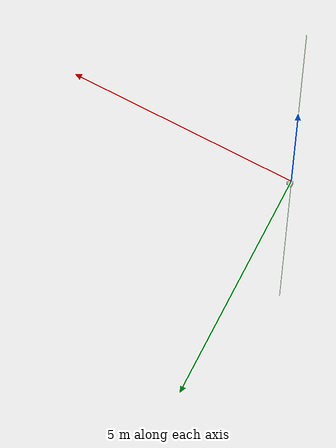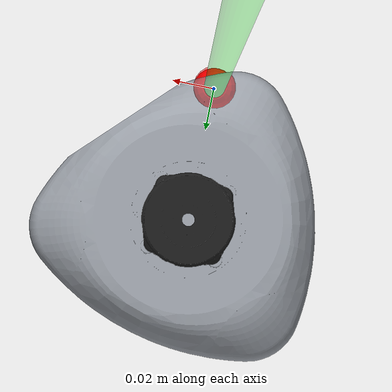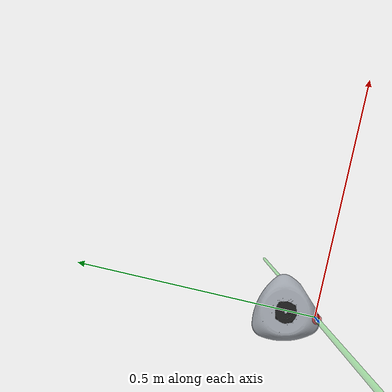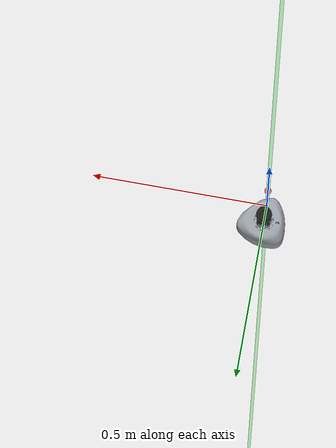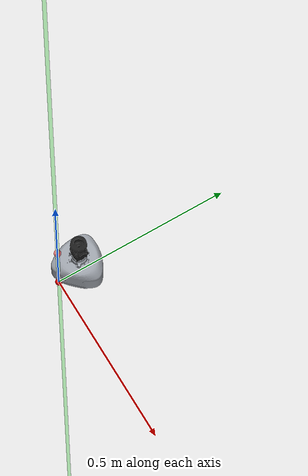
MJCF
<mujoco model="ecbpi_ur_gripper_model">
  <compiler angle="radian" autolimits="true"/>

  <asset>
    <mesh name="ecbpi_ur_body" file="meshes/ecbpi_ur/ecbpi_ur_body.obj"/>
    <mesh name="ecbpi_ur_cup" file="meshes/ecbpi_ur/ecbpi_ur_cup.obj"/>
    <material name="ecbpi_ur_housing" rgba="0.6 0.62 0.65 1"/>
    <material name="ecbpi_ur_cup_mat" rgba="0.1 0.1 0.1 1"/>
  </asset>

  <worldbody>
    <body name="base_mount" pos="0 0 0">
      <site name="ft_frame" pos="0 0 0" size="0.01 0.01 0.01" rgba="1 0 0 1" type="sphere" group="1"/>
      <inertial mass="0.5" pos="0 0 0.08" diaginertia="6e-4 6e-4 3e-4"/>

      <!-- Flange + pump housing (visual only; no collision geom, since nothing ever contacts this gripper in this pipeline) -->
      <geom type="mesh" mesh="ecbpi_ur_body" pos="0 0 0.008133" quat="0.7071068 -0.7071068 0 0"
            material="ecbpi_ur_housing" contype="0" conaffinity="0" group="1"/>

      <body name="eef" pos="0 0 0.20" quat="0.707105 0 0 -0.707105">
        <site name="grip_site" pos="0 0 0" size="0.01 0.01 0.01" rgba="1 0 0 0.5" type="sphere"/>
        <site name="ee_x" pos="0.1 0 0" size="0.005 .1" quat="0.707105 0 0.707108 0" rgba="1 0 0 0" type="cylinder"/>
        <site name="ee_y" pos="0 0.1 0" size="0.005 .1" quat="0.707105 0.707108 0 0" rgba="0 1 0 0" type="cylinder"/>
        <site name="ee_z" pos="0 0 0.1" size="0.005 .1" quat="1 0 0 0" rgba="0 0 1 0" type="cylinder"/>
        <!-- This site was added for visualization. -->
        <site name="grip_site_cylinder" pos="0 0 0" size="0.005 10" rgba="0 1 0 0.3" type="cylinder"/>
      </body>

      <body name="cup_assembly" pos="0 0 0.008133" quat="0.7071068 -0.7071068 0 0">
        <inertial mass="0.03" pos="0 0 0.13" diaginertia="1e-6 1e-6 1e-6"/>
        <joint name="cup_bellows_joint" type="slide" axis="0 0 1" range="-0.01 0" damping="5" stiffness="200" springref="0"/>
        <geom type="mesh" mesh="ecbpi_ur_cup" material="ecbpi_ur_cup_mat" contype="0" conaffinity="0" group="1"/>
      </body>
    </body>
  </worldbody>

  <actuator>
    <position name="cup_actuator" joint="cup_bellows_joint" ctrlrange="-0.01 0" kp="80"/>
  </actuator>

  <sensor>
    <force name="force_ee" site="ft_frame"/>
    <torque name="torque_ee" site="ft_frame"/>
  </sensor>
</mujoco>
